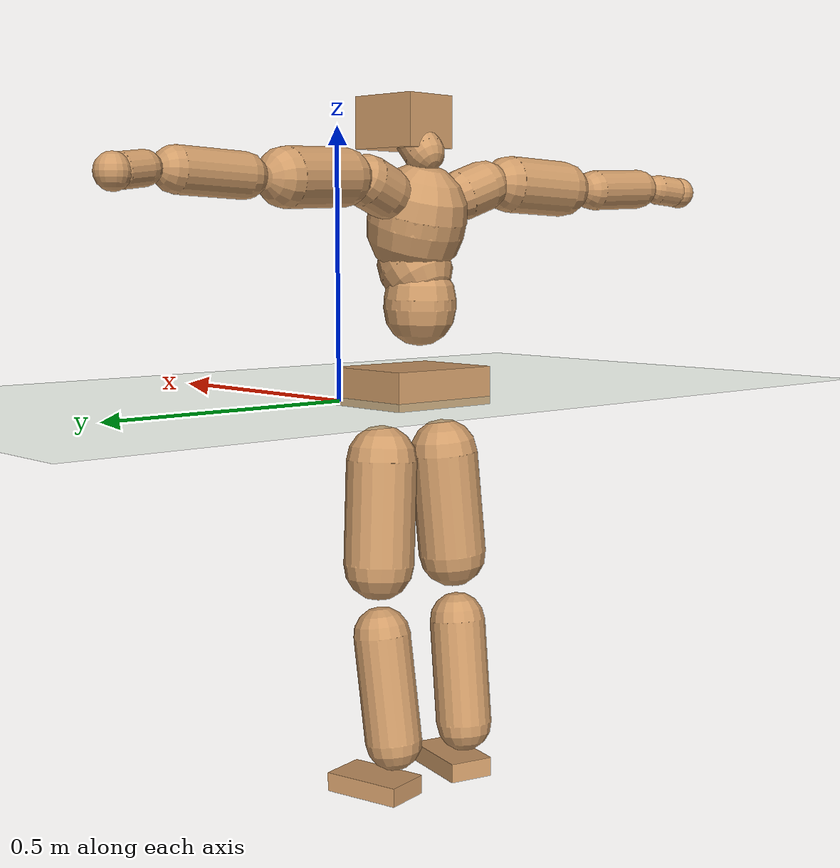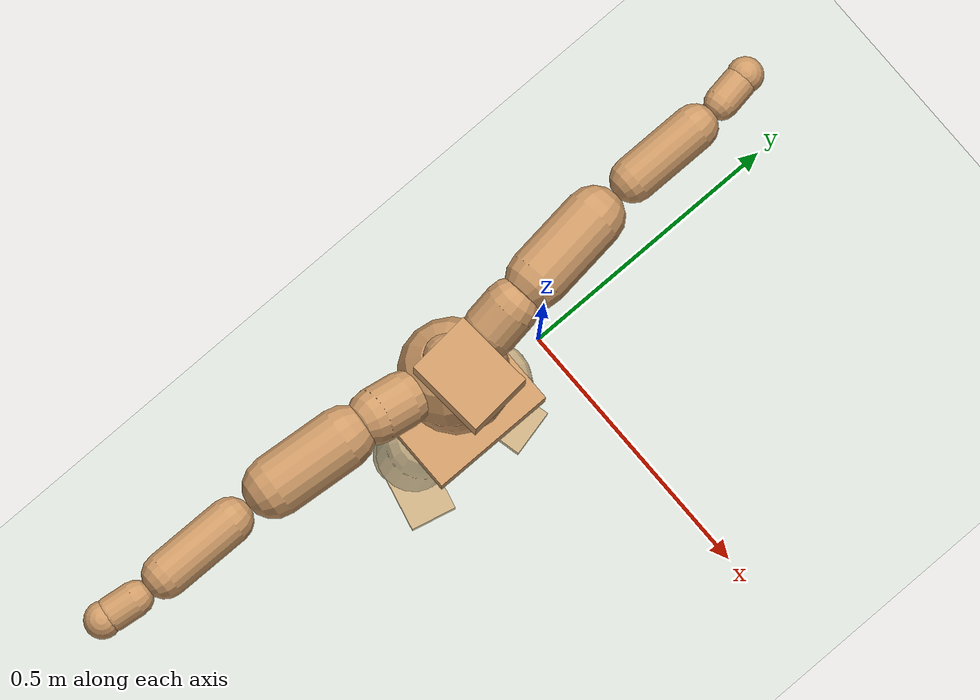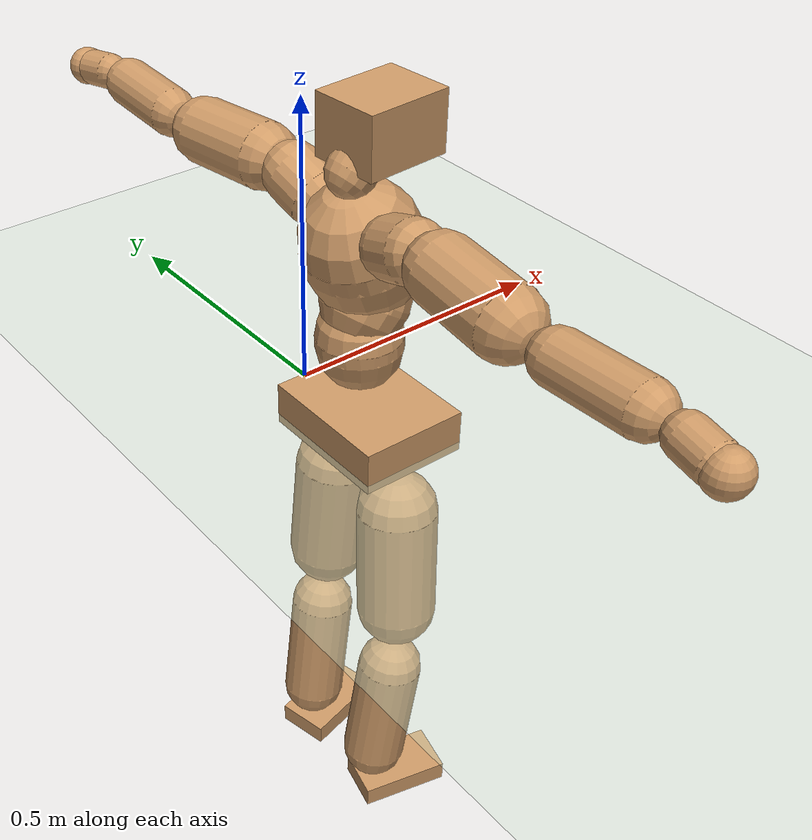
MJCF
<mujoco model="humanoid">
  <compiler coordinate="local" angle="radian"/>
  <default>
    <joint damping="0.0" armature="0.01" stiffness="0.0" limited="true"/>
    <geom conaffinity="1" condim="3" contype="7" margin="0.001" rgba="0.8 0.6 .4 1"/>
  </default>
  <asset>
    <texture type="skybox" builtin="gradient" rgb1=".4 .5 .6" rgb2="0 0 0" width="100" height="100"/>
    <texture builtin="flat" height="1278" mark="cross" markrgb="1 1 1" name="texgeom" random="0.01" rgb1="0.8 0.6 0.4" rgb2="0.8 0.6 0.4" type="cube" width="127"/>
    <texture builtin="checker" height="100" name="texplane" rgb1="0 0 0" rgb2="0.8 0.8 0.8" type="2d" width="100"/>
    <material name="MatPlane" reflectance="0.5" shininess="1" specular="1" texrepeat="60 60" texture="texplane"/>
    <material name="geom" texture="texgeom" texuniform="true"/>
  </asset>
  <worldbody>
    <light cutoff="100" diffuse="1 1 1" dir="-0 0 -1.3" directional="true" exponent="1" pos="0 0 1.3" specular=".1 .1 .1"/>
    <geom conaffinity="1" condim="3" name="floor" pos="0 0 0" rgba="0.8 0.9 0.8 1" size="100 100 .2" type="plane" material="MatPlane"/>
    <body name="Pelvis" pos="0.0006 -0.1779 0.0315">
      <freejoint name="Pelvis"/>
      <geom type="box" contype="1" conaffinity="1" density="500" pos="-0.0053 0.0000 -0.0121" size="0.0927 0.1172 0.0365" quat="1.0000 0.0000 0.0000 -0.0005" name="Pelvis"/>
      <body name="L_Hip" pos="-0.0051 0.0767 -0.0838">
        <joint name="L_Hip_x" type="hinge" pos="0 0 0" axis="1 0 0" stiffness="800" damping="80" armature="0.02" range="-180.0000 180.0000"/>
        <joint name="L_Hip_y" type="hinge" pos="0 0 0" axis="0 1 0" stiffness="800" damping="80" armature="0.02" range="-180.0000 180.0000"/>
        <joint name="L_Hip_z" type="hinge" pos="0 0 0" axis="0 0 1" stiffness="800" damping="80" armature="0.02" range="-180.0000 180.0000"/>
        <geom type="capsule" contype="1" conaffinity="1" density="500" fromto="-0.0023 0.0046 -0.0664 -0.0092 0.0183 -0.2654" size="0.0677" name="L_Hip"/>
        <body name="L_Knee" pos="-0.0115 0.0228 -0.3318">
          <joint name="L_Knee_x" type="hinge" pos="0 0 0" axis="1 0 0" stiffness="800" damping="80" armature="0.02" range="-180.0000 180.0000"/>
          <joint name="L_Knee_y" type="hinge" pos="0 0 0" axis="0 1 0" stiffness="800" damping="80" armature="0.02" range="-180.0000 180.0000"/>
          <joint name="L_Knee_z" type="hinge" pos="0 0 0" axis="0 0 1" stiffness="800" damping="80" armature="0.02" range="-180.0000 180.0000"/>
          <geom type="capsule" contype="1" conaffinity="1" density="500" fromto="-0.0090 -0.0018 -0.0682 -0.0358 -0.0072 -0.2728" size="0.0552" name="L_Knee"/>
          <body name="L_Ankle" pos="-0.0448 -0.0089 -0.341">
            <joint name="L_Ankle_x" type="hinge" pos="0 0 0" axis="1 0 0" stiffness="800" damping="80" armature="0.02" range="-180.0000 180.0000"/>
            <joint name="L_Ankle_y" type="hinge" pos="0 0 0" axis="0 1 0" stiffness="800" damping="80" armature="0.02" range="-180.0000 180.0000"/>
            <joint name="L_Ankle_z" type="hinge" pos="0 0 0" axis="0 0 1" stiffness="800" damping="80" armature="0.02" range="-180.0000 180.0000"/>
            <geom type="box" contype="1" conaffinity="1" density="500" pos="0.0528 0.0124 -0.0243" size="0.0792 0.0465 0.0183" quat="0.9934 0.0000 0.0000 0.1149" name="L_Ankle"/>
            <body name="L_Toe" pos="0.1056 0.0248 -0.0486">
              <joint name="L_Toe_x" type="hinge" pos="0 0 0" axis="1 0 0" stiffness="500" damping="50" armature="0.02" range="-180.0000 180.0000"/>
              <joint name="L_Toe_y" type="hinge" pos="0 0 0" axis="0 1 0" stiffness="500" damping="50" armature="0.02" range="-180.0000 180.0000"/>
              <joint name="L_Toe_z" type="hinge" pos="0 0 0" axis="0 0 1" stiffness="500" damping="50" armature="0.02" range="-180.0000 180.0000"/>
              <geom type="box" contype="1" conaffinity="1" density="500" pos="0.0000 0.0000 0.0236" size="0.0009 0.0023 0.0009" quat="0.9926 0.0000 0.0000 0.1215" name="L_Toe"/>
            </body>
          </body>
        </body>
      </body>
      <body name="R_Hip" pos="-0.0032 -0.0756 -0.083">
        <joint name="R_Hip_x" type="hinge" pos="0 0 0" axis="1 0 0" stiffness="800" damping="80" armature="0.02" range="-180.0000 180.0000"/>
        <joint name="R_Hip_y" type="hinge" pos="0 0 0" axis="0 1 0" stiffness="800" damping="80" armature="0.02" range="-180.0000 180.0000"/>
        <joint name="R_Hip_z" type="hinge" pos="0 0 0" axis="0 0 1" stiffness="800" damping="80" armature="0.02" range="-180.0000 180.0000"/>
        <geom type="capsule" contype="1" conaffinity="1" density="500" fromto="-0.0028 -0.0054 -0.0671 -0.0110 -0.0216 -0.2683" size="0.0671" name="R_Hip"/>
        <body name="R_Knee" pos="-0.0138 -0.027 -0.3354">
          <joint name="R_Knee_x" type="hinge" pos="0 0 0" axis="1 0 0" stiffness="800" damping="80" armature="0.02" range="-180.0000 180.0000"/>
          <joint name="R_Knee_y" type="hinge" pos="0 0 0" axis="0 1 0" stiffness="800" damping="80" armature="0.02" range="-180.0000 180.0000"/>
          <joint name="R_Knee_z" type="hinge" pos="0 0 0" axis="0 0 1" stiffness="800" damping="80" armature="0.02" range="-180.0000 180.0000"/>
          <geom type="capsule" contype="1" conaffinity="1" density="500" fromto="-0.0089 0.0021 -0.0684 -0.0354 0.0086 -0.2736" size="0.0552" name="R_Knee"/>
          <body name="R_Ankle" pos="-0.0443 0.0107 -0.342">
            <joint name="R_Ankle_x" type="hinge" pos="0 0 0" axis="1 0 0" stiffness="800" damping="80" armature="0.02" range="-180.0000 180.0000"/>
            <joint name="R_Ankle_y" type="hinge" pos="0 0 0" axis="0 1 0" stiffness="800" damping="80" armature="0.02" range="-180.0000 180.0000"/>
            <joint name="R_Ankle_z" type="hinge" pos="0 0 0" axis="0 0 1" stiffness="800" damping="80" armature="0.02" range="-180.0000 180.0000"/>
            <geom type="box" contype="1" conaffinity="1" density="500" pos="0.0545 -0.0128 -0.0211" size="0.0783 0.045 0.0189" quat="0.9934 0.0000 0.0000 -0.1151" name="R_Ankle"/>
            <body name="R_Toe" pos="0.1091 -0.0256 -0.0422">
              <joint name="R_Toe_x" type="hinge" pos="0 0 0" axis="1 0 0" stiffness="500" damping="50" armature="0.02" range="-180.0000 180.0000"/>
              <joint name="R_Toe_y" type="hinge" pos="0 0 0" axis="0 1 0" stiffness="500" damping="50" armature="0.02" range="-180.0000 180.0000"/>
              <joint name="R_Toe_z" type="hinge" pos="0 0 0" axis="0 0 1" stiffness="500" damping="50" armature="0.02" range="-180.0000 180.0000"/>
              <geom type="box" contype="1" conaffinity="1" density="500" pos="0.0000 0.0000 0.0214" size="0.0009 0.0023 0.001" quat="0.9945 0.0000 0.0000 -0.1046" name="R_Toe"/>
            </body>
          </body>
        </body>
      </body>
      <body name="Torso" pos="-0.0237 -0.0011 0.0945">
        <joint name="Torso_x" type="hinge" pos="0 0 0" axis="1 0 0" stiffness="1000" damping="100" armature="0.02" range="-180.0000 180.0000"/>
        <joint name="Torso_y" type="hinge" pos="0 0 0" axis="0 1 0" stiffness="1000" damping="100" armature="0.02" range="-180.0000 180.0000"/>
        <joint name="Torso_z" type="hinge" pos="0 0 0" axis="0 0 1" stiffness="1000" damping="100" armature="0.02" range="-180.0000 180.0000"/>
        <geom type="capsule" contype="1" conaffinity="1" density="500" fromto="-0.0018 0.0006 0.0599 -0.0012 0.0004 0.0399" size="0.0694" name="Torso"/>
        <body name="Spine" pos="-0.003 0.001 0.0998">
          <joint name="Spine_x" type="hinge" pos="0 0 0" axis="1 0 0" stiffness="1000" damping="100" armature="0.02" range="-180.0000 180.0000"/>
          <joint name="Spine_y" type="hinge" pos="0 0 0" axis="0 1 0" stiffness="1000" damping="100" armature="0.02" range="-180.0000 180.0000"/>
          <joint name="Spine_z" type="hinge" pos="0 0 0" axis="0 0 1" stiffness="1000" damping="100" armature="0.02" range="-180.0000 180.0000"/>
          <geom type="capsule" contype="1" conaffinity="1" density="500" fromto="0.0169 0.0014 0.0246 0.0113 0.0009 0.0164" size="0.0703" name="Spine"/>
          <body name="Chest" pos="0.0281 0.0023 0.0411">
            <joint name="Chest_x" type="hinge" pos="0 0 0" axis="1 0 0" stiffness="1000" damping="100" armature="0.02" range="-180.0000 180.0000"/>
            <joint name="Chest_y" type="hinge" pos="0 0 0" axis="0 1 0" stiffness="1000" damping="100" armature="0.02" range="-180.0000 180.0000"/>
            <joint name="Chest_z" type="hinge" pos="0 0 0" axis="0 0 1" stiffness="1000" damping="100" armature="0.02" range="-180.0000 180.0000"/>
            <geom type="capsule" contype="1" conaffinity="1" density="500" fromto="-0.0249 -0.0001 0.0794 -0.0166 -0.0000 0.0529" size="0.0941" name="Chest"/>
            <body name="Neck" pos="-0.0515 0.0011 0.181">
              <joint name="Neck_x" type="hinge" pos="0 0 0" axis="1 0 0" stiffness="500" damping="50" armature="0.02" range="-180.0000 180.0000"/>
              <joint name="Neck_y" type="hinge" pos="0 0 0" axis="0 1 0" stiffness="500" damping="50" armature="0.02" range="-180.0000 180.0000"/>
              <joint name="Neck_z" type="hinge" pos="0 0 0" axis="0 0 1" stiffness="500" damping="50" armature="0.02" range="-180.0000 180.0000"/>
              <geom type="capsule" contype="1" conaffinity="1" density="500" fromto="0.0082 0.0003 0.0089 0.0330 0.0011 0.0356" size="0.0386" name="Neck"/>
              <body name="Head" pos="0.0412 0.0014 0.0445">
                <joint name="Head_x" type="hinge" pos="0 0 0" axis="1 0 0" stiffness="500" damping="50" armature="0.02" range="-180.0000 180.0000"/>
                <joint name="Head_y" type="hinge" pos="0 0 0" axis="0 1 0" stiffness="500" damping="50" armature="0.02" range="-180.0000 180.0000"/>
                <joint name="Head_z" type="hinge" pos="0 0 0" axis="0 0 1" stiffness="500" damping="50" armature="0.02" range="-180.0000 180.0000"/>
                <geom type="box" contype="1" conaffinity="1" density="500" pos="0.0216 0.0017 0.0232" size="0.0716 0.0574 0.0489" quat="0.9992 0.0000 0.0000 0.0391" name="Head"/>
              </body>
            </body>
            <body name="L_Thorax" pos="-0.0339 0.0743 0.1089">
              <joint name="L_Thorax_x" type="hinge" pos="0 0 0" axis="1 0 0" stiffness="500" damping="50" armature="0.02" range="-180.0000 180.0000"/>
              <joint name="L_Thorax_y" type="hinge" pos="0 0 0" axis="0 1 0" stiffness="500" damping="50" armature="0.02" range="-180.0000 180.0000"/>
              <joint name="L_Thorax_z" type="hinge" pos="0 0 0" axis="0 0 1" stiffness="500" damping="50" armature="0.02" range="-180.0000 180.0000"/>
              <geom type="capsule" contype="1" conaffinity="1" density="500" fromto="-0.0019 0.0167 0.0064 -0.0077 0.0666 0.0258" size="0.0488" name="L_Thorax"/>
              <body name="L_Shoulder" pos="-0.0097 0.0833 0.0322">
                <joint name="L_Shoulder_x" type="hinge" pos="0 0 0" axis="1 0 0" stiffness="500" damping="50" armature="0.02" range="-720.0000 720.0000"/>
                <joint name="L_Shoulder_y" type="hinge" pos="0 0 0" axis="0 1 0" stiffness="500" damping="50" armature="0.02" range="-720.0000 720.0000"/>
                <joint name="L_Shoulder_z" type="hinge" pos="0 0 0" axis="0 0 1" stiffness="500" damping="50" armature="0.02" range="-720.0000 720.0000"/>
                <geom type="capsule" contype="1" conaffinity="1" density="500" fromto="-0.0055 0.0460 -0.0017 -0.0221 0.1838 -0.0067" size="0.0535" name="L_Shoulder"/>
                <body name="L_Elbow" pos="-0.0277 0.2298 -0.0084">
                  <joint name="L_Elbow_x" type="hinge" pos="0 0 0" axis="1 0 0" stiffness="500" damping="50" armature="0.02" range="-720.0000 720.0000"/>
                  <joint name="L_Elbow_y" type="hinge" pos="0 0 0" axis="0 1 0" stiffness="500" damping="50" armature="0.02" range="-720.0000 720.0000"/>
                  <joint name="L_Elbow_z" type="hinge" pos="0 0 0" axis="0 0 1" stiffness="500" damping="50" armature="0.02" range="-720.0000 720.0000"/>
                  <geom type="capsule" contype="1" conaffinity="1" density="500" fromto="0.0002 0.0446 0.0019 0.0009 0.1784 0.0074" size="0.04" name="L_Elbow"/>
                  <body name="L_Wrist" pos="0.0012 0.223 0.0093">
                    <joint name="L_Wrist_x" type="hinge" pos="0 0 0" axis="1 0 0" stiffness="300" damping="30" armature="0.02" range="-180.0000 180.0000"/>
                    <joint name="L_Wrist_y" type="hinge" pos="0 0 0" axis="0 1 0" stiffness="300" damping="30" armature="0.02" range="-180.0000 180.0000"/>
                    <joint name="L_Wrist_z" type="hinge" pos="0 0 0" axis="0 0 1" stiffness="300" damping="30" armature="0.02" range="-180.0000 180.0000"/>
                    <geom type="capsule" contype="1" conaffinity="1" density="500" fromto="-0.0026 0.0155 -0.0019 -0.0102 0.0620 -0.0075" size="0.0297" name="L_Wrist"/>
                    <body name="L_Hand" pos="-0.0128 0.0775 -0.0093">
                      <joint name="L_Hand_x" type="hinge" pos="0 0 0" axis="1 0 0" stiffness="300" damping="30" armature="0.02" range="-180.0000 180.0000"/>
                      <joint name="L_Hand_y" type="hinge" pos="0 0 0" axis="0 1 0" stiffness="300" damping="30" armature="0.02" range="-180.0000 180.0000"/>
                      <joint name="L_Hand_z" type="hinge" pos="0 0 0" axis="0 0 1" stiffness="300" damping="30" armature="0.02" range="-180.0000 180.0000"/>
                      <geom type="sphere" contype="1" conaffinity="1" density="500" size="0.0314" pos="0.0000 0.0000 0.0000" name="L_Hand"/>
                    </body>
                  </body>
                </body>
              </body>
            </body>
            <body name="R_Thorax" pos="-0.0392 -0.0757 0.1072">
              <joint name="R_Thorax_x" type="hinge" pos="0 0 0" axis="1 0 0" stiffness="500" damping="50" armature="0.02" range="-180.0000 180.0000"/>
              <joint name="R_Thorax_y" type="hinge" pos="0 0 0" axis="0 1 0" stiffness="500" damping="50" armature="0.02" range="-180.0000 180.0000"/>
              <joint name="R_Thorax_z" type="hinge" pos="0 0 0" axis="0 0 1" stiffness="500" damping="50" armature="0.02" range="-180.0000 180.0000"/>
              <geom type="capsule" contype="1" conaffinity="1" density="500" fromto="-0.0025 -0.0178 0.0065 -0.0099 -0.0711 0.0262" size="0.0484" name="R_Thorax"/>
              <body name="R_Shoulder" pos="-0.0124 -0.0889 0.0327">
                <joint name="R_Shoulder_x" type="hinge" pos="0 0 0" axis="1 0 0" stiffness="500" damping="50" armature="0.02" range="-720.0000 720.0000"/>
                <joint name="R_Shoulder_y" type="hinge" pos="0 0 0" axis="0 1 0" stiffness="500" damping="50" armature="0.02" range="-720.0000 720.0000"/>
                <joint name="R_Shoulder_z" type="hinge" pos="0 0 0" axis="0 0 1" stiffness="500" damping="50" armature="0.02" range="-720.0000 720.0000"/>
                <geom type="capsule" contype="1" conaffinity="1" density="500" fromto="-0.0042 -0.0459 -0.0020 -0.0169 -0.1837 -0.0082" size="0.0545" name="R_Shoulder"/>
                <body name="R_Elbow" pos="-0.0211 -0.2296 -0.0102">
                  <joint name="R_Elbow_x" type="hinge" pos="0 0 0" axis="1 0 0" stiffness="500" damping="50" armature="0.02" range="-720.0000 720.0000"/>
                  <joint name="R_Elbow_y" type="hinge" pos="0 0 0" axis="0 1 0" stiffness="500" damping="50" armature="0.02" range="-720.0000 720.0000"/>
                  <joint name="R_Elbow_z" type="hinge" pos="0 0 0" axis="0 0 1" stiffness="500" damping="50" armature="0.02" range="-720.0000 720.0000"/>
                  <geom type="capsule" contype="1" conaffinity="1" density="500" fromto="-0.0001 -0.0462 0.0018 -0.0005 -0.1846 0.0074" size="0.0401" name="R_Elbow"/>
                  <body name="R_Wrist" pos="-0.0007 -0.2308 0.0092">
                    <joint name="R_Wrist_x" type="hinge" pos="0 0 0" axis="1 0 0" stiffness="300" damping="30" armature="0.02" range="-180.0000 180.0000"/>
                    <joint name="R_Wrist_y" type="hinge" pos="0 0 0" axis="0 1 0" stiffness="300" damping="30" armature="0.02" range="-180.0000 180.0000"/>
                    <joint name="R_Wrist_z" type="hinge" pos="0 0 0" axis="0 0 1" stiffness="300" damping="30" armature="0.02" range="-180.0000 180.0000"/>
                    <geom type="capsule" contype="1" conaffinity="1" density="500" fromto="-0.0021 -0.0159 -0.0015 -0.0085 -0.0634 -0.0058" size="0.0308" name="R_Wrist"/>
                    <body name="R_Hand" pos="-0.0106 -0.0793 -0.0073">
                      <joint name="R_Hand_x" type="hinge" pos="0 0 0" axis="1 0 0" stiffness="300" damping="30" armature="0.02" range="-180.0000 180.0000"/>
                      <joint name="R_Hand_y" type="hinge" pos="0 0 0" axis="0 1 0" stiffness="300" damping="30" armature="0.02" range="-180.0000 180.0000"/>
                      <joint name="R_Hand_z" type="hinge" pos="0 0 0" axis="0 0 1" stiffness="300" damping="30" armature="0.02" range="-180.0000 180.0000"/>
                      <geom type="sphere" contype="1" conaffinity="1" density="500" size="0.0321" pos="0.0000 0.0000 0.0000" name="R_Hand"/>
                    </body>
                  </body>
                </body>
              </body>
            </body>
          </body>
        </body>
      </body>
    </body>
  </worldbody>
  <actuator>
    <motor name="L_Hip_x" joint="L_Hip_x" gear="500"/>
    <motor name="L_Hip_y" joint="L_Hip_y" gear="500"/>
    <motor name="L_Hip_z" joint="L_Hip_z" gear="500"/>
    <motor name="L_Knee_x" joint="L_Knee_x" gear="500"/>
    <motor name="L_Knee_y" joint="L_Knee_y" gear="500"/>
    <motor name="L_Knee_z" joint="L_Knee_z" gear="500"/>
    <motor name="L_Ankle_x" joint="L_Ankle_x" gear="500"/>
    <motor name="L_Ankle_y" joint="L_Ankle_y" gear="500"/>
    <motor name="L_Ankle_z" joint="L_Ankle_z" gear="500"/>
    <motor name="L_Toe_x" joint="L_Toe_x" gear="500"/>
    <motor name="L_Toe_y" joint="L_Toe_y" gear="500"/>
    <motor name="L_Toe_z" joint="L_Toe_z" gear="500"/>
    <motor name="R_Hip_x" joint="R_Hip_x" gear="500"/>
    <motor name="R_Hip_y" joint="R_Hip_y" gear="500"/>
    <motor name="R_Hip_z" joint="R_Hip_z" gear="500"/>
    <motor name="R_Knee_x" joint="R_Knee_x" gear="500"/>
    <motor name="R_Knee_y" joint="R_Knee_y" gear="500"/>
    <motor name="R_Knee_z" joint="R_Knee_z" gear="500"/>
    <motor name="R_Ankle_x" joint="R_Ankle_x" gear="500"/>
    <motor name="R_Ankle_y" joint="R_Ankle_y" gear="500"/>
    <motor name="R_Ankle_z" joint="R_Ankle_z" gear="500"/>
    <motor name="R_Toe_x" joint="R_Toe_x" gear="500"/>
    <motor name="R_Toe_y" joint="R_Toe_y" gear="500"/>
    <motor name="R_Toe_z" joint="R_Toe_z" gear="500"/>
    <motor name="Torso_x" joint="Torso_x" gear="500"/>
    <motor name="Torso_y" joint="Torso_y" gear="500"/>
    <motor name="Torso_z" joint="Torso_z" gear="500"/>
    <motor name="Spine_x" joint="Spine_x" gear="500"/>
    <motor name="Spine_y" joint="Spine_y" gear="500"/>
    <motor name="Spine_z" joint="Spine_z" gear="500"/>
    <motor name="Chest_x" joint="Chest_x" gear="500"/>
    <motor name="Chest_y" joint="Chest_y" gear="500"/>
    <motor name="Chest_z" joint="Chest_z" gear="500"/>
    <motor name="Neck_x" joint="Neck_x" gear="500"/>
    <motor name="Neck_y" joint="Neck_y" gear="500"/>
    <motor name="Neck_z" joint="Neck_z" gear="500"/>
    <motor name="Head_x" joint="Head_x" gear="500"/>
    <motor name="Head_y" joint="Head_y" gear="500"/>
    <motor name="Head_z" joint="Head_z" gear="500"/>
    <motor name="L_Thorax_x" joint="L_Thorax_x" gear="500"/>
    <motor name="L_Thorax_y" joint="L_Thorax_y" gear="500"/>
    <motor name="L_Thorax_z" joint="L_Thorax_z" gear="500"/>
    <motor name="L_Shoulder_x" joint="L_Shoulder_x" gear="500"/>
    <motor name="L_Shoulder_y" joint="L_Shoulder_y" gear="500"/>
    <motor name="L_Shoulder_z" joint="L_Shoulder_z" gear="500"/>
    <motor name="L_Elbow_x" joint="L_Elbow_x" gear="500"/>
    <motor name="L_Elbow_y" joint="L_Elbow_y" gear="500"/>
    <motor name="L_Elbow_z" joint="L_Elbow_z" gear="500"/>
    <motor name="L_Wrist_x" joint="L_Wrist_x" gear="500"/>
    <motor name="L_Wrist_y" joint="L_Wrist_y" gear="500"/>
    <motor name="L_Wrist_z" joint="L_Wrist_z" gear="500"/>
    <motor name="L_Hand_x" joint="L_Hand_x" gear="500"/>
    <motor name="L_Hand_y" joint="L_Hand_y" gear="500"/>
    <motor name="L_Hand_z" joint="L_Hand_z" gear="500"/>
    <motor name="R_Thorax_x" joint="R_Thorax_x" gear="500"/>
    <motor name="R_Thorax_y" joint="R_Thorax_y" gear="500"/>
    <motor name="R_Thorax_z" joint="R_Thorax_z" gear="500"/>
    <motor name="R_Shoulder_x" joint="R_Shoulder_x" gear="500"/>
    <motor name="R_Shoulder_y" joint="R_Shoulder_y" gear="500"/>
    <motor name="R_Shoulder_z" joint="R_Shoulder_z" gear="500"/>
    <motor name="R_Elbow_x" joint="R_Elbow_x" gear="500"/>
    <motor name="R_Elbow_y" joint="R_Elbow_y" gear="500"/>
    <motor name="R_Elbow_z" joint="R_Elbow_z" gear="500"/>
    <motor name="R_Wrist_x" joint="R_Wrist_x" gear="500"/>
    <motor name="R_Wrist_y" joint="R_Wrist_y" gear="500"/>
    <motor name="R_Wrist_z" joint="R_Wrist_z" gear="500"/>
    <motor name="R_Hand_x" joint="R_Hand_x" gear="500"/>
    <motor name="R_Hand_y" joint="R_Hand_y" gear="500"/>
    <motor name="R_Hand_z" joint="R_Hand_z" gear="500"/>
  </actuator>
  <contact>
    <exclude body1="Torso" body2="Chest"/>
    <exclude body1="Head" body2="Chest"/>
    <exclude body1="R_Knee" body2="R_Toe"/>
    <exclude body1="R_Knee" body2="L_Ankle"/>
    <exclude body1="R_Knee" body2="L_Toe"/>
    <exclude body1="L_Knee" body2="L_Toe"/>
    <exclude body1="L_Knee" body2="R_Ankle"/>
    <exclude body1="L_Knee" body2="R_Toe"/>
    <exclude body1="L_Shoulder" body2="Chest"/>
    <exclude body1="R_Shoulder" body2="Chest"/>
  </contact>
  <sensor/>
  <size njmax="700" nconmax="700"/>
</mujoco>
